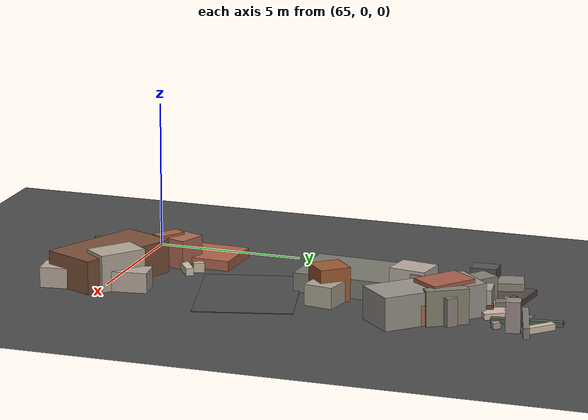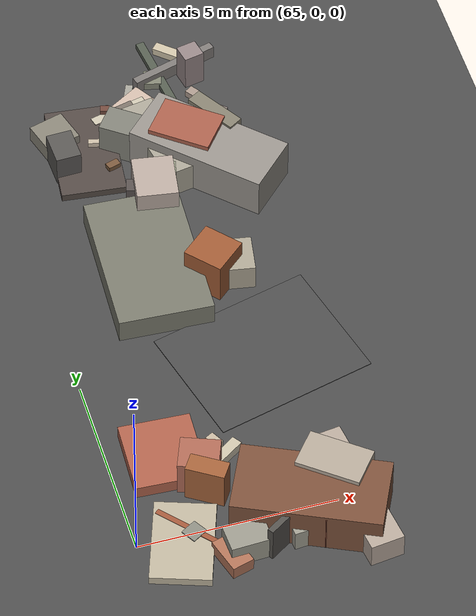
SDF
<sdf version="1.6">
 <world name="navitas_arena">
  <model name="ground_plane">
   <static>true</static>
   <link name="link">
    <collision name="collision">
     <geometry><plane><normal>0 0 1</normal><size>400 400</size></plane></geometry>
     <surface><friction><ode><mu>0.800</mu><mu2>0.800</mu2></ode></friction></surface>
    </collision>
    <visual name="visual">
     <cast_shadows>false</cast_shadows>
     <geometry><plane><normal>0 0 1</normal><size>400 400</size></plane></geometry>
     <material>
      <specular>0.04 0.04 0.04 1</specular>
      <script>
       <uri>file://media/materials/scripts/navitas_asphalt.material</uri>
       <name>Navitas/RealArenaAsphalt</name>
      </script>
     </material>
    </visual>
   </link>
  </model>
  <model name="road_zor_1_14">
   <static>true</static>
   <pose>69.567 4.833 0.040 0 0 1.821</pose>
   <link name="link">
    <collision name="col"><geometry><box><size>3.309 4.200 0.020</size></box></geometry></collision>
    <visual name="vis">
     <geometry><box><size>3.309 4.200 0.020</size></box></geometry>
     <material>
      <specular>0.04 0.04 0.04 1</specular>
      <script>
       <uri>file://media/materials/scripts/navitas_asphalt.material</uri>
       <name>Navitas/RealArenaAsphalt</name>
      </script>
     </material>
    </visual>
   </link>
  </model>
  <model name="blk_zor_1_2_2">
   <static>true</static>
   <pose>69.661 -0.575 0.000 0 0 0</pose>
   <link name="link">
    <collision name="col_0">
     <pose>-0.030 1.008 0.399 0.000 0.000 3.531</pose>
     <geometry><box><size>0.354 0.538 0.798</size></box></geometry>
    </collision>
    <visual name="vis_0">
     <pose>-0.030 1.008 0.399 0.000 0.000 3.531</pose>
     <geometry><box><size>0.354 0.538 0.798</size></box></geometry>
     <material>
      <ambient>0.43 0.30 0.21 1</ambient>
      <diffuse>0.46 0.33 0.23 1</diffuse>
      <specular>0.05 0.05 0.045 1</specular>
     </material>
    </visual>
    <collision name="col_1">
     <pose>0.329 0.912 0.629 0.000 0.000 2.467</pose>
     <geometry><box><size>1.638 1.029 1.258</size></box></geometry>
    </collision>
    <visual name="vis_1">
     <pose>0.329 0.912 0.629 0.000 0.000 2.467</pose>
     <geometry><box><size>1.638 1.029 1.258</size></box></geometry>
     <material>
      <ambient>0.66 0.61 0.56 1</ambient>
      <diffuse>0.71 0.66 0.60 1</diffuse>
      <specular>0.05 0.05 0.045 1</specular>
     </material>
    </visual>
    <collision name="col_2">
     <pose>0.678 0.342 0.342 0.000 0.000 1.703</pose>
     <geometry><box><size>3.631 0.856 0.684</size></box></geometry>
    </collision>
    <visual name="vis_2">
     <pose>0.678 0.342 0.342 0.000 0.000 1.703</pose>
     <geometry><box><size>3.631 0.856 0.684</size></box></geometry>
     <material>
      <ambient>0.67 0.61 0.56 1</ambient>
      <diffuse>0.72 0.66 0.61 1</diffuse>
      <specular>0.05 0.05 0.045 1</specular>
     </material>
    </visual>
    <collision name="col_3">
     <pose>-0.555 0.165 0.505 0.000 0.000 3.723</pose>
     <geometry><box><size>2.785 0.160 1.011</size></box></geometry>
    </collision>
    <visual name="vis_3">
     <pose>-0.555 0.165 0.505 0.000 0.000 3.723</pose>
     <geometry><box><size>2.785 0.160 1.011</size></box></geometry>
     <material>
      <ambient>0.31 0.30 0.28 1</ambient>
      <diffuse>0.33 0.32 0.30 1</diffuse>
      <specular>0.05 0.05 0.045 1</specular>
     </material>
    </visual>
    <collision name="col_4">
     <pose>-0.412 0.370 0.568 0.000 0.000 2.702</pose>
     <geometry><box><size>3.668 1.895 1.137</size></box></geometry>
    </collision>
    <visual name="vis_4">
     <pose>-0.412 0.370 0.568 0.000 0.000 2.702</pose>
     <geometry><box><size>3.668 1.895 1.137</size></box></geometry>
     <material>
      <ambient>0.45 0.30 0.22 1</ambient>
      <diffuse>0.49 0.32 0.23 1</diffuse>
      <specular>0.05 0.05 0.045 1</specular>
     </material>
    </visual>
    <collision name="col_5">
     <pose>-0.060 -0.341 0.289 0.000 0.000 3.230</pose>
     <geometry><box><size>2.077 0.228 0.578</size></box></geometry>
    </collision>
    <visual name="vis_5">
     <pose>-0.060 -0.341 0.289 0.000 0.000 3.230</pose>
     <geometry><box><size>2.077 0.228 0.578</size></box></geometry>
     <material>
      <ambient>0.58 0.58 0.53 1</ambient>
      <diffuse>0.63 0.62 0.57 1</diffuse>
      <specular>0.05 0.05 0.045 1</specular>
     </material>
    </visual>
    <collision name="col_6">
     <pose>0.435 0.484 0.316 0.000 0.000 1.936</pose>
     <geometry><box><size>0.388 0.275 0.631</size></box></geometry>
    </collision>
    <visual name="vis_6">
     <pose>0.435 0.484 0.316 0.000 0.000 1.936</pose>
     <geometry><box><size>0.388 0.275 0.631</size></box></geometry>
     <material>
      <ambient>0.42 0.43 0.42 1</ambient>
      <diffuse>0.46 0.46 0.45 1</diffuse>
      <specular>0.05 0.05 0.045 1</specular>
     </material>
    </visual>
    <collision name="col_7">
     <pose>0.173 -0.155 0.531 0.000 0.000 1.814</pose>
     <geometry><box><size>0.798 1.344 1.062</size></box></geometry>
    </collision>
    <visual name="vis_7">
     <pose>0.173 -0.155 0.531 0.000 0.000 1.814</pose>
     <geometry><box><size>0.798 1.344 1.062</size></box></geometry>
     <material>
      <ambient>0.56 0.30 0.22 1</ambient>
      <diffuse>0.60 0.32 0.24 1</diffuse>
      <specular>0.05 0.05 0.045 1</specular>
     </material>
    </visual>
    <collision name="col_8">
     <pose>0.277 0.537 0.429 0.000 0.000 1.972</pose>
     <geometry><box><size>1.591 0.370 0.858</size></box></geometry>
    </collision>
    <visual name="vis_8">
     <pose>0.277 0.537 0.429 0.000 0.000 1.972</pose>
     <geometry><box><size>1.591 0.370 0.858</size></box></geometry>
     <material>
      <ambient>0.40 0.38 0.36 1</ambient>
      <diffuse>0.43 0.41 0.39 1</diffuse>
      <specular>0.05 0.05 0.045 1</specular>
     </material>
    </visual>
   </link>
  </model>
  <model name="blk_zor_1_3_2">
   <static>true</static>
   <pose>68.860 9.052 0.000 0 0 0</pose>
   <link name="link">
    <collision name="col_0">
     <pose>0.633 -1.518 0.360 0.000 0.000 -0.171</pose>
     <geometry><box><size>1.259 1.010 0.720</size></box></geometry>
    </collision>
    <visual name="vis_0">
     <pose>0.633 -1.518 0.360 0.000 0.000 -0.171</pose>
     <geometry><box><size>1.259 1.010 0.720</size></box></geometry>
     <material>
      <ambient>0.63 0.61 0.54 1</ambient>
      <diffuse>0.68 0.65 0.58 1</diffuse>
      <specular>0.05 0.05 0.045 1</specular>
     </material>
    </visual>
    <collision name="col_1">
     <pose>-0.485 1.095 0.587 0.000 0.000 1.418</pose>
     <geometry><box><size>1.261 1.045 1.173</size></box></geometry>
    </collision>
    <visual name="vis_1">
     <pose>-0.485 1.095 0.587 0.000 0.000 1.418</pose>
     <geometry><box><size>1.261 1.045 1.173</size></box></geometry>
     <material>
      <ambient>0.67 0.62 0.58 1</ambient>
      <diffuse>0.73 0.67 0.63 1</diffuse>
      <specular>0.05 0.05 0.045 1</specular>
     </material>
    </visual>
    <collision name="col_2">
     <pose>0.242 -1.558 0.578 0.000 0.000 -0.847</pose>
     <geometry><box><size>1.048 1.016 1.156</size></box></geometry>
    </collision>
    <visual name="vis_2">
     <pose>0.242 -1.558 0.578 0.000 0.000 -0.847</pose>
     <geometry><box><size>1.048 1.016 1.156</size></box></geometry>
     <material>
      <ambient>0.59 0.33 0.19 1</ambient>
      <diffuse>0.63 0.36 0.21 1</diffuse>
      <specular>0.05 0.05 0.045 1</specular>
     </material>
    </visual>
    <collision name="col_3">
     <pose>-1.233 -0.925 0.327 0.000 0.000 1.524</pose>
     <geometry><box><size>3.936 2.402 0.655</size></box></geometry>
    </collision>
    <visual name="vis_3">
     <pose>-1.233 -0.925 0.327 0.000 0.000 1.524</pose>
     <geometry><box><size>3.936 2.402 0.655</size></box></geometry>
     <material>
      <ambient>0.45 0.45 0.40 1</ambient>
      <diffuse>0.48 0.48 0.43 1</diffuse>
      <specular>0.05 0.05 0.045 1</specular>
     </material>
    </visual>
    <collision name="col_4">
     <pose>-0.048 1.371 0.532 0.000 0.000 -0.229</pose>
     <geometry><box><size>0.358 0.393 1.064</size></box></geometry>
    </collision>
    <visual name="vis_4">
     <pose>-0.048 1.371 0.532 0.000 0.000 -0.229</pose>
     <geometry><box><size>0.358 0.393 1.064</size></box></geometry>
     <material>
      <ambient>0.56 0.57 0.48 1</ambient>
      <diffuse>0.60 0.61 0.52 1</diffuse>
      <specular>0.05 0.05 0.045 1</specular>
     </material>
    </visual>
    <collision name="col_5">
     <pose>-1.014 1.227 0.432 0.000 0.000 -0.289</pose>
     <geometry><box><size>0.335 0.391 0.865</size></box></geometry>
    </collision>
    <visual name="vis_5">
     <pose>-1.014 1.227 0.432 0.000 0.000 -0.289</pose>
     <geometry><box><size>0.335 0.391 0.865</size></box></geometry>
     <material>
      <ambient>0.32 0.29 0.29 1</ambient>
      <diffuse>0.35 0.32 0.31 1</diffuse>
      <specular>0.05 0.05 0.045 1</specular>
     </material>
    </visual>
   </link>
  </model>
  <model name="blk_zor_1_3_5">
   <static>true</static>
   <pose>69.961 11.287 0.000 0 0 0</pose>
   <link name="link">
    <collision name="col_0">
     <pose>0.369 -0.107 0.337 0.000 0.000 2.164</pose>
     <geometry><box><size>1.658 1.082 0.674</size></box></geometry>
    </collision>
    <visual name="vis_0">
     <pose>0.369 -0.107 0.337 0.000 0.000 2.164</pose>
     <geometry><box><size>1.658 1.082 0.674</size></box></geometry>
     <material>
      <ambient>0.64 0.38 0.27 1</ambient>
      <diffuse>0.69 0.41 0.30 1</diffuse>
      <specular>0.05 0.05 0.045 1</specular>
     </material>
    </visual>
    <collision name="col_1">
     <pose>0.083 0.597 0.511 0.000 0.000 1.018</pose>
     <geometry><box><size>0.441 0.372 1.022</size></box></geometry>
    </collision>
    <visual name="vis_1">
     <pose>0.083 0.597 0.511 0.000 0.000 1.018</pose>
     <geometry><box><size>0.441 0.372 1.022</size></box></geometry>
     <material>
      <ambient>0.31 0.32 0.30 1</ambient>
      <diffuse>0.34 0.35 0.32 1</diffuse>
      <specular>0.05 0.05 0.045 1</specular>
     </material>
    </visual>
    <collision name="col_2">
     <pose>0.069 -0.258 0.558 0.000 0.000 2.362</pose>
     <geometry><box><size>3.676 1.566 1.115</size></box></geometry>
    </collision>
    <visual name="vis_2">
     <pose>0.069 -0.258 0.558 0.000 0.000 2.362</pose>
     <geometry><box><size>3.676 1.566 1.115</size></box></geometry>
     <material>
      <ambient>0.56 0.54 0.50 1</ambient>
      <diffuse>0.60 0.58 0.55 1</diffuse>
      <specular>0.05 0.05 0.045 1</specular>
     </material>
    </visual>
    <collision name="col_3">
     <pose>0.475 0.586 0.589 0.000 0.000 2.124</pose>
     <geometry><box><size>1.424 0.404 1.177</size></box></geometry>
    </collision>
    <visual name="vis_3">
     <pose>0.475 0.586 0.589 0.000 0.000 2.124</pose>
     <geometry><box><size>1.424 0.404 1.177</size></box></geometry>
     <material>
      <ambient>0.49 0.47 0.41 1</ambient>
      <diffuse>0.53 0.51 0.44 1</diffuse>
      <specular>0.05 0.05 0.045 1</specular>
     </material>
    </visual>
    <collision name="col_4">
     <pose>0.538 0.669 0.474 0.000 0.000 2.387</pose>
     <geometry><box><size>0.379 0.567 0.947</size></box></geometry>
    </collision>
    <visual name="vis_4">
     <pose>0.538 0.669 0.474 0.000 0.000 2.387</pose>
     <geometry><box><size>0.379 0.567 0.947</size></box></geometry>
     <material>
      <ambient>0.52 0.48 0.47 1</ambient>
      <diffuse>0.57 0.52 0.50 1</diffuse>
      <specular>0.05 0.05 0.045 1</specular>
     </material>
    </visual>
    <collision name="col_5">
     <pose>-0.350 0.276 0.624 0.000 0.000 2.480</pose>
     <geometry><box><size>1.607 1.154 1.247</size></box></geometry>
    </collision>
    <visual name="vis_5">
     <pose>-0.350 0.276 0.624 0.000 0.000 2.480</pose>
     <geometry><box><size>1.607 1.154 1.247</size></box></geometry>
     <material>
      <ambient>0.62 0.35 0.28 1</ambient>
      <diffuse>0.67 0.38 0.30 1</diffuse>
      <specular>0.05 0.05 0.045 1</specular>
     </material>
    </visual>
    <collision name="col_6">
     <pose>-1.044 0.392 0.416 0.000 0.000 1.750</pose>
     <geometry><box><size>2.534 0.832 0.832</size></box></geometry>
    </collision>
    <visual name="vis_6">
     <pose>-1.044 0.392 0.416 0.000 0.000 1.750</pose>
     <geometry><box><size>2.534 0.832 0.832</size></box></geometry>
     <material>
      <ambient>0.62 0.60 0.55 1</ambient>
      <diffuse>0.67 0.65 0.59 1</diffuse>
      <specular>0.05 0.05 0.045 1</specular>
     </material>
    </visual>
   </link>
  </model>
  <model name="deb_zor_60">
   <static>true</static>
   <pose>67.958 12.971 0.000 0 0 0</pose>
   <link name="link">
    <collision name="col_0">
     <pose>0.695 0.100 0.099 0.000 0.000 0.548</pose>
     <geometry><box><size>1.572 1.297 0.199</size></box></geometry>
    </collision>
    <visual name="vis_0">
     <pose>0.695 0.100 0.099 0.000 0.000 0.548</pose>
     <geometry><box><size>1.572 1.297 0.199</size></box></geometry>
     <material>
      <ambient>0.76 0.68 0.62 1</ambient>
      <diffuse>0.82 0.73 0.67 1</diffuse>
      <specular>0.05 0.05 0.045 1</specular>
     </material>
    </visual>
    <collision name="col_1">
     <pose>0.503 0.294 0.098 0.000 0.000 1.168</pose>
     <geometry><box><size>1.907 0.185 0.197</size></box></geometry>
    </collision>
    <visual name="vis_1">
     <pose>0.503 0.294 0.098 0.000 0.000 1.168</pose>
     <geometry><box><size>1.907 0.185 0.197</size></box></geometry>
     <material>
      <ambient>0.60 0.60 0.56 1</ambient>
      <diffuse>0.65 0.64 0.60 1</diffuse>
      <specular>0.05 0.05 0.045 1</specular>
     </material>
    </visual>
    <collision name="col_2">
     <pose>0.266 -0.408 0.138 0.000 0.000 2.992</pose>
     <geometry><box><size>0.260 0.229 0.276</size></box></geometry>
    </collision>
    <visual name="vis_2">
     <pose>0.266 -0.408 0.138 0.000 0.000 2.992</pose>
     <geometry><box><size>0.260 0.229 0.276</size></box></geometry>
     <material>
      <ambient>0.70 0.68 0.58 1</ambient>
      <diffuse>0.76 0.73 0.63 1</diffuse>
      <specular>0.05 0.05 0.045 1</specular>
     </material>
    </visual>
    <collision name="col_3">
     <pose>0.027 0.446 0.173 0.000 0.000 2.853</pose>
     <geometry><box><size>0.241 0.187 0.346</size></box></geometry>
    </collision>
    <visual name="vis_3">
     <pose>0.027 0.446 0.173 0.000 0.000 2.853</pose>
     <geometry><box><size>0.241 0.187 0.346</size></box></geometry>
     <material>
      <ambient>0.42 0.27 0.22 1</ambient>
      <diffuse>0.45 0.29 0.24 1</diffuse>
      <specular>0.05 0.05 0.045 1</specular>
     </material>
    </visual>
    <collision name="col_4">
     <pose>-0.063 -0.664 0.168 0.000 0.000 2.905</pose>
     <geometry><box><size>1.264 0.145 0.335</size></box></geometry>
    </collision>
    <visual name="vis_4">
     <pose>-0.063 -0.664 0.168 0.000 0.000 2.905</pose>
     <geometry><box><size>1.264 0.145 0.335</size></box></geometry>
     <material>
      <ambient>0.73 0.67 0.60 1</ambient>
      <diffuse>0.79 0.73 0.65 1</diffuse>
      <specular>0.05 0.05 0.045 1</specular>
     </material>
    </visual>
   </link>
  </model>
  <model name="deb_zor_124">
   <static>true</static>
   <pose>67.211 12.242 0.000 0 0 0</pose>
   <link name="link">
    <collision name="col_0">
     <pose>-0.681 0.668 0.228 0.000 0.000 0.283</pose>
     <geometry><box><size>0.916 0.897 0.455</size></box></geometry>
    </collision>
    <visual name="vis_0">
     <pose>-0.681 0.668 0.228 0.000 0.000 0.283</pose>
     <geometry><box><size>0.916 0.897 0.455</size></box></geometry>
     <material>
      <ambient>0.50 0.48 0.44 1</ambient>
      <diffuse>0.54 0.52 0.47 1</diffuse>
      <specular>0.05 0.05 0.045 1</specular>
     </material>
    </visual>
    <collision name="col_1">
     <pose>-0.670 -0.191 0.423 0.000 0.000 0.040</pose>
     <geometry><box><size>0.651 0.873 0.847</size></box></geometry>
    </collision>
    <visual name="vis_1">
     <pose>-0.670 -0.191 0.423 0.000 0.000 0.040</pose>
     <geometry><box><size>0.651 0.873 0.847</size></box></geometry>
     <material>
      <ambient>0.32 0.32 0.30 1</ambient>
      <diffuse>0.35 0.34 0.33 1</diffuse>
      <specular>0.05 0.05 0.045 1</specular>
     </material>
    </visual>
    <collision name="col_2">
     <pose>-0.051 0.071 0.098 0.000 0.000 1.465</pose>
     <geometry><box><size>2.823 1.651 0.196</size></box></geometry>
    </collision>
    <visual name="vis_2">
     <pose>-0.051 0.071 0.098 0.000 0.000 1.465</pose>
     <geometry><box><size>2.823 1.651 0.196</size></box></geometry>
     <material>
      <ambient>0.31 0.26 0.25 1</ambient>
      <diffuse>0.33 0.29 0.27 1</diffuse>
      <specular>0.05 0.05 0.045 1</specular>
     </material>
    </visual>
    <collision name="col_3">
     <pose>0.473 -0.672 0.163 0.000 0.000 -1.283</pose>
     <geometry><box><size>0.195 0.335 0.326</size></box></geometry>
    </collision>
    <visual name="vis_3">
     <pose>0.473 -0.672 0.163 0.000 0.000 -1.283</pose>
     <geometry><box><size>0.195 0.335 0.326</size></box></geometry>
     <material>
      <ambient>0.44 0.33 0.22 1</ambient>
      <diffuse>0.48 0.35 0.24 1</diffuse>
      <specular>0.05 0.05 0.045 1</specular>
     </material>
    </visual>
   </link>
  </model>
  <model name="deb_zor_126">
   <static>true</static>
   <pose>66.921 -0.249 0.000 0 0 0</pose>
   <link name="link">
    <collision name="col_0">
     <pose>0.154 -0.753 0.180 0.000 0.000 0.285</pose>
     <geometry><box><size>0.568 0.950 0.361</size></box></geometry>
    </collision>
    <visual name="vis_0">
     <pose>0.154 -0.753 0.180 0.000 0.000 0.285</pose>
     <geometry><box><size>0.568 0.950 0.361</size></box></geometry>
     <material>
      <ambient>0.65 0.43 0.33 1</ambient>
      <diffuse>0.70 0.46 0.35 1</diffuse>
      <specular>0.05 0.05 0.045 1</specular>
     </material>
    </visual>
    <collision name="col_1">
     <pose>-0.859 -0.035 0.113 0.000 0.000 1.236</pose>
     <geometry><box><size>2.266 1.500 0.226</size></box></geometry>
    </collision>
    <visual name="vis_1">
     <pose>-0.859 -0.035 0.113 0.000 0.000 1.236</pose>
     <geometry><box><size>2.266 1.500 0.226</size></box></geometry>
     <material>
      <ambient>0.69 0.66 0.57 1</ambient>
      <diffuse>0.75 0.71 0.62 1</diffuse>
      <specular>0.05 0.05 0.045 1</specular>
     </material>
    </visual>
    <collision name="col_2">
     <pose>-0.444 0.105 0.119 0.000 0.000 2.293</pose>
     <geometry><box><size>2.330 0.145 0.237</size></box></geometry>
    </collision>
    <visual name="vis_2">
     <pose>-0.444 0.105 0.119 0.000 0.000 2.293</pose>
     <geometry><box><size>2.330 0.145 0.237</size></box></geometry>
     <material>
      <ambient>0.59 0.32 0.21 1</ambient>
      <diffuse>0.64 0.35 0.23 1</diffuse>
      <specular>0.05 0.05 0.045 1</specular>
     </material>
    </visual>
    <collision name="col_3">
     <pose>0.572 -0.556 0.330 0.000 0.000 0.047</pose>
     <geometry><box><size>1.029 0.740 0.659</size></box></geometry>
    </collision>
    <visual name="vis_3">
     <pose>0.572 -0.556 0.330 0.000 0.000 0.047</pose>
     <geometry><box><size>1.029 0.740 0.659</size></box></geometry>
     <material>
      <ambient>0.56 0.56 0.51 1</ambient>
      <diffuse>0.61 0.60 0.55 1</diffuse>
      <specular>0.05 0.05 0.045 1</specular>
     </material>
    </visual>
    <collision name="col_4">
     <pose>-0.526 0.144 0.125 0.000 0.000 2.115</pose>
     <geometry><box><size>0.414 0.445 0.250</size></box></geometry>
    </collision>
    <visual name="vis_4">
     <pose>-0.526 0.144 0.125 0.000 0.000 2.115</pose>
     <geometry><box><size>0.414 0.445 0.250</size></box></geometry>
     <material>
      <ambient>0.51 0.51 0.47 1</ambient>
      <diffuse>0.55 0.55 0.51 1</diffuse>
      <specular>0.05 0.05 0.045 1</specular>
     </material>
    </visual>
   </link>
  </model>
  <model name="deb_zor_146">
   <static>true</static>
   <pose>67.109 1.791 0.000 0 0 0</pose>
   <link name="link">
    <collision name="col_0">
     <pose>-0.047 -0.731 0.541 0.000 0.000 2.564</pose>
     <geometry><box><size>0.980 0.487 1.083</size></box></geometry>
    </collision>
    <visual name="vis_0">
     <pose>-0.047 -0.731 0.541 0.000 0.000 2.564</pose>
     <geometry><box><size>0.980 0.487 1.083</size></box></geometry>
     <material>
      <ambient>0.60 0.36 0.22 1</ambient>
      <diffuse>0.65 0.39 0.23 1</diffuse>
      <specular>0.05 0.05 0.045 1</specular>
     </material>
    </visual>
    <collision name="col_1">
     <pose>-0.822 0.278 0.106 0.000 0.000 2.758</pose>
     <geometry><box><size>1.077 0.152 0.212</size></box></geometry>
    </collision>
    <visual name="vis_1">
     <pose>-0.822 0.278 0.106 0.000 0.000 2.758</pose>
     <geometry><box><size>1.077 0.152 0.212</size></box></geometry>
     <material>
      <ambient>0.60 0.57 0.55 1</ambient>
      <diffuse>0.65 0.62 0.59 1</diffuse>
      <specular>0.05 0.05 0.045 1</specular>
     </material>
    </visual>
    <collision name="col_2">
     <pose>0.505 0.563 0.164 0.000 0.000 0.496</pose>
     <geometry><box><size>0.236 0.374 0.327</size></box></geometry>
    </collision>
    <visual name="vis_2">
     <pose>0.505 0.563 0.164 0.000 0.000 0.496</pose>
     <geometry><box><size>0.236 0.374 0.327</size></box></geometry>
     <material>
      <ambient>0.72 0.67 0.59 1</ambient>
      <diffuse>0.78 0.72 0.63 1</diffuse>
      <specular>0.05 0.05 0.045 1</specular>
     </material>
    </visual>
    <collision name="col_3">
     <pose>0.409 0.025 0.128 0.000 0.000 0.593</pose>
     <geometry><box><size>1.538 0.268 0.256</size></box></geometry>
    </collision>
    <visual name="vis_3">
     <pose>0.409 0.025 0.128 0.000 0.000 0.593</pose>
     <geometry><box><size>1.538 0.268 0.256</size></box></geometry>
     <material>
      <ambient>0.74 0.71 0.62 1</ambient>
      <diffuse>0.80 0.76 0.67 1</diffuse>
      <specular>0.05 0.05 0.045 1</specular>
     </material>
    </visual>
    <collision name="col_4">
     <pose>-0.780 0.564 0.172 0.000 0.000 1.525</pose>
     <geometry><box><size>1.932 1.782 0.343</size></box></geometry>
    </collision>
    <visual name="vis_4">
     <pose>-0.780 0.564 0.172 0.000 0.000 1.525</pose>
     <geometry><box><size>1.932 1.782 0.343</size></box></geometry>
     <material>
      <ambient>0.64 0.36 0.28 1</ambient>
      <diffuse>0.69 0.39 0.30 1</diffuse>
      <specular>0.05 0.05 0.045 1</specular>
     </material>
    </visual>
    <collision name="col_5">
     <pose>-0.106 -0.238 0.499 0.000 0.000 2.773</pose>
     <geometry><box><size>0.990 0.876 0.998</size></box></geometry>
    </collision>
    <visual name="vis_5">
     <pose>-0.106 -0.238 0.499 0.000 0.000 2.773</pose>
     <geometry><box><size>0.990 0.876 0.998</size></box></geometry>
     <material>
      <ambient>0.64 0.39 0.31 1</ambient>
      <diffuse>0.69 0.42 0.34 1</diffuse>
      <specular>0.05 0.05 0.045 1</specular>
     </material>
    </visual>
   </link>
  </model>
  <model name="deb_zor_244">
   <static>true</static>
   <pose>69.734 14.279 0.000 0 0 0</pose>
   <link name="link">
    <collision name="col_0">
     <pose>0.351 0.140 0.181 0.000 0.000 3.427</pose>
     <geometry><box><size>2.322 0.202 0.363</size></box></geometry>
    </collision>
    <visual name="vis_0">
     <pose>0.351 0.140 0.181 0.000 0.000 3.427</pose>
     <geometry><box><size>2.322 0.202 0.363</size></box></geometry>
     <material>
      <ambient>0.46 0.45 0.44 1</ambient>
      <diffuse>0.50 0.48 0.47 1</diffuse>
      <specular>0.05 0.05 0.045 1</specular>
     </material>
    </visual>
    <collision name="col_1">
     <pose>-0.093 0.059 0.080 0.000 0.000 1.695</pose>
     <geometry><box><size>2.349 0.215 0.160</size></box></geometry>
    </collision>
    <visual name="vis_1">
     <pose>-0.093 0.059 0.080 0.000 0.000 1.695</pose>
     <geometry><box><size>2.349 0.215 0.160</size></box></geometry>
     <material>
      <ambient>0.31 0.34 0.29 1</ambient>
      <diffuse>0.34 0.37 0.32 1</diffuse>
      <specular>0.05 0.05 0.045 1</specular>
     </material>
    </visual>
    <collision name="col_2">
     <pose>0.708 -0.167 0.512 0.000 0.000 3.342</pose>
     <geometry><box><size>0.522 0.484 1.024</size></box></geometry>
    </collision>
    <visual name="vis_2">
     <pose>0.708 -0.167 0.512 0.000 0.000 3.342</pose>
     <geometry><box><size>0.522 0.484 1.024</size></box></geometry>
     <material>
      <ambient>0.55 0.49 0.49 1</ambient>
      <diffuse>0.59 0.53 0.53 1</diffuse>
      <specular>0.05 0.05 0.045 1</specular>
     </material>
    </visual>
    <collision name="col_3">
     <pose>-0.265 -0.059 0.102 0.000 0.000 2.908</pose>
     <geometry><box><size>0.442 0.447 0.203</size></box></geometry>
    </collision>
    <visual name="vis_3">
     <pose>-0.265 -0.059 0.102 0.000 0.000 2.908</pose>
     <geometry><box><size>0.442 0.447 0.203</size></box></geometry>
     <material>
      <ambient>0.48 0.49 0.43 1</ambient>
      <diffuse>0.52 0.53 0.46 1</diffuse>
      <specular>0.05 0.05 0.045 1</specular>
     </material>
    </visual>
    <collision name="col_4">
     <pose>0.521 0.608 0.105 0.000 0.000 2.411</pose>
     <geometry><box><size>1.144 0.254 0.209</size></box></geometry>
    </collision>
    <visual name="vis_4">
     <pose>0.521 0.608 0.105 0.000 0.000 2.411</pose>
     <geometry><box><size>1.144 0.254 0.209</size></box></geometry>
     <material>
      <ambient>0.75 0.70 0.61 1</ambient>
      <diffuse>0.81 0.76 0.66 1</diffuse>
      <specular>0.05 0.05 0.045 1</specular>
     </material>
    </visual>
    <collision name="col_5">
     <pose>0.588 -0.782 0.094 0.000 0.000 2.179</pose>
     <geometry><box><size>0.261 0.241 0.189</size></box></geometry>
    </collision>
    <visual name="vis_5">
     <pose>0.588 -0.782 0.094 0.000 0.000 2.179</pose>
     <geometry><box><size>0.261 0.241 0.189</size></box></geometry>
     <material>
      <ambient>0.62 0.55 0.51 1</ambient>
      <diffuse>0.67 0.60 0.55 1</diffuse>
      <specular>0.05 0.05 0.045 1</specular>
     </material>
    </visual>
   </link>
  </model>
  <model name="deb_zor_352">
   <static>true</static>
   <pose>68.436 12.797 0.000 0 0 0</pose>
   <link name="link">
    <collision name="col_0">
     <pose>0.070 0.405 0.173 0.000 0.000 3.389</pose>
     <geometry><box><size>0.467 0.468 0.346</size></box></geometry>
    </collision>
    <visual name="vis_0">
     <pose>0.070 0.405 0.173 0.000 0.000 3.389</pose>
     <geometry><box><size>0.467 0.468 0.346</size></box></geometry>
     <material>
      <ambient>0.46 0.42 0.38 1</ambient>
      <diffuse>0.49 0.45 0.41 1</diffuse>
      <specular>0.05 0.05 0.045 1</specular>
     </material>
    </visual>
    <collision name="col_1">
     <pose>-0.103 0.558 0.105 0.000 0.000 3.394</pose>
     <geometry><box><size>1.501 0.245 0.210</size></box></geometry>
    </collision>
    <visual name="vis_1">
     <pose>-0.103 0.558 0.105 0.000 0.000 3.394</pose>
     <geometry><box><size>1.501 0.245 0.210</size></box></geometry>
     <material>
      <ambient>0.74 0.72 0.64 1</ambient>
      <diffuse>0.80 0.77 0.69 1</diffuse>
      <specular>0.05 0.05 0.045 1</specular>
     </material>
    </visual>
    <collision name="col_2">
     <pose>-0.330 -0.486 0.495 0.000 0.000 4.072</pose>
     <geometry><box><size>0.765 0.892 0.989</size></box></geometry>
    </collision>
    <visual name="vis_2">
     <pose>-0.330 -0.486 0.495 0.000 0.000 4.072</pose>
     <geometry><box><size>0.765 0.892 0.989</size></box></geometry>
     <material>
      <ambient>0.47 0.48 0.43 1</ambient>
      <diffuse>0.51 0.51 0.47 1</diffuse>
      <specular>0.05 0.05 0.045 1</specular>
     </material>
    </visual>
    <collision name="col_3">
     <pose>0.583 0.039 0.172 0.000 0.000 3.361</pose>
     <geometry><box><size>0.265 0.418 0.344</size></box></geometry>
    </collision>
    <visual name="vis_3">
     <pose>0.583 0.039 0.172 0.000 0.000 3.361</pose>
     <geometry><box><size>0.265 0.418 0.344</size></box></geometry>
     <material>
      <ambient>0.39 0.27 0.22 1</ambient>
      <diffuse>0.42 0.29 0.23 1</diffuse>
      <specular>0.05 0.05 0.045 1</specular>
     </material>
    </visual>
   </link>
  </model>
 </world>
</sdf>
